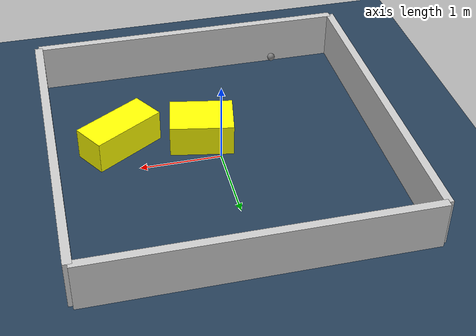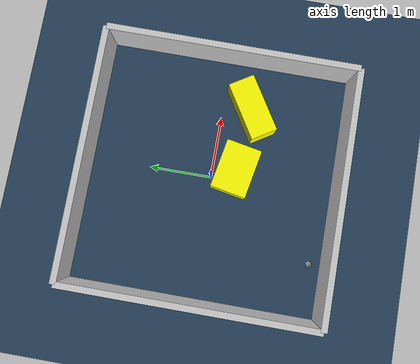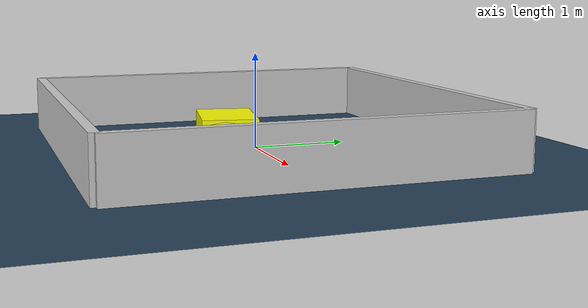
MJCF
<?xml version="1.0" ?>
<mujoco model="generated_environment">
  <option timestep="0.01" integrator="RK4" cone="elliptic"/>
  <default>
    <geom density="1"/>
  </default>
  <asset>
    <texture builtin="gradient" height="3072" rgb1="0.3 0.5 0.7" rgb2="0 0 0" type="skybox" width="512"/>
    <texture builtin="checker" height="300" mark="edge" markrgb="0.8 0.8 0.8" name="groundplane" rgb1="0.2 0.3 0.4" rgb2="0.1 0.2 0.3" type="2d" width="300"/>
    <material name="groundplane" reflectance="0.2" texrepeat="5 5" texture="groundplane" texuniform="true"/>
    <material name="robot" rgba="0.0 1.0 0.0 1"/>
  </asset>
  <worldbody>
    <light dir="0 0 -1" directional="true" pos="0 0 1.5"/>
    <geom condim="4" friction="1.0 0.005 0.001" material="groundplane" name="floor" size="0 0 0.05" type="plane"/>
    <body name="walls">
      <geom name="wall_1" condim="4" pos="-2.0 0.0 0.3" rgba="0.800000011920929 0.800000011920929 0.800000011920929 1.0" size="0.05 2.0 0.3" type="box"/>
      <geom name="wall_2" condim="4" pos="2.0 0.0 0.3" rgba="0.800000011920929 0.800000011920929 0.800000011920929 1.0" size="0.05 2.0 0.3" type="box"/>
      <geom name="wall_3" condim="4" pos="0.0 -2.0 0.3" rgba="0.800000011920929 0.800000011920929 0.800000011920929 1.0" size="2.0 0.05 0.3" type="box"/>
      <geom name="wall_4" condim="4" pos="0.0 2.0 0.3" rgba="0.800000011920929 0.800000011920929 0.800000011920929 1.0" size="2.0 0.05 0.3" type="box"/>
    </body>
    <body name="robot">
      <joint name="joint_x" type="slide" pos="0 0 0" axis="1 0 0"/>
      <joint name="joint_y" type="slide" pos="0 0 0" axis="0 1 0"/>
      <geom name="robot" type="sphere" pos="-1.0980151882460385 -1.7244503626074101 0.2" size="0.05" mass="5." friction="1.0 0.005 0.0001" condim="4"/>
      <site name="sensor_ball"/>
    </body>
    <body name="obstacle_1_movable">
      <geom name="obstacle_1_movable" condim="4" pos="0.1665307501011033 -0.3658359476537205 0.2" euler="0 0 259.36490257450174" friction="1.0 0.005 0.001" rgba="1 1 0 1" size="0.28271064465746615 0.38925516198569843 0.2" type="box" mass="0.1"/>
      <joint type="free"/>
    </body>
    <body name="obstacle_2_movable">
      <geom name="obstacle_2_movable" condim="4" pos="1.1722902150903844 -0.45967071735630416 0.2" euler="0 0 31.858464839352763" friction="1.0 0.005 0.001" rgba="1 1 0 1" size="0.4731102587866856 0.21345990525972813 0.2" type="box" mass="0.1"/>
      <joint type="free"/>
    </body>
  </worldbody>
  <actuator>
    <motor name="actuator_x" joint="joint_x" gear="1" ctrlrange="-1 1"/>
    <motor name="actuator_y" joint="joint_y" gear="1" ctrlrange="-1 1"/>
  </actuator>
</mujoco>
